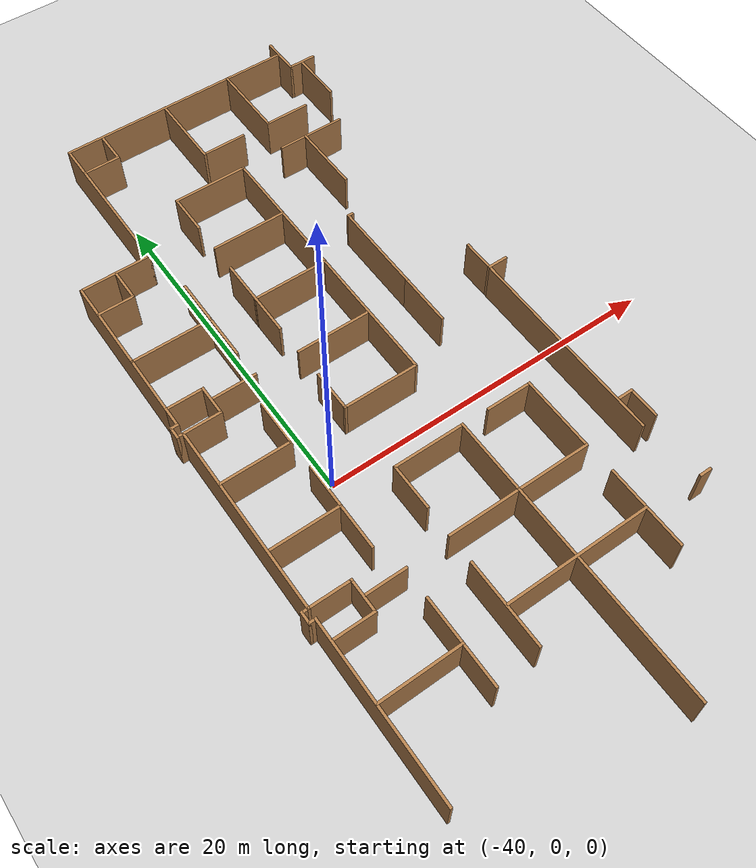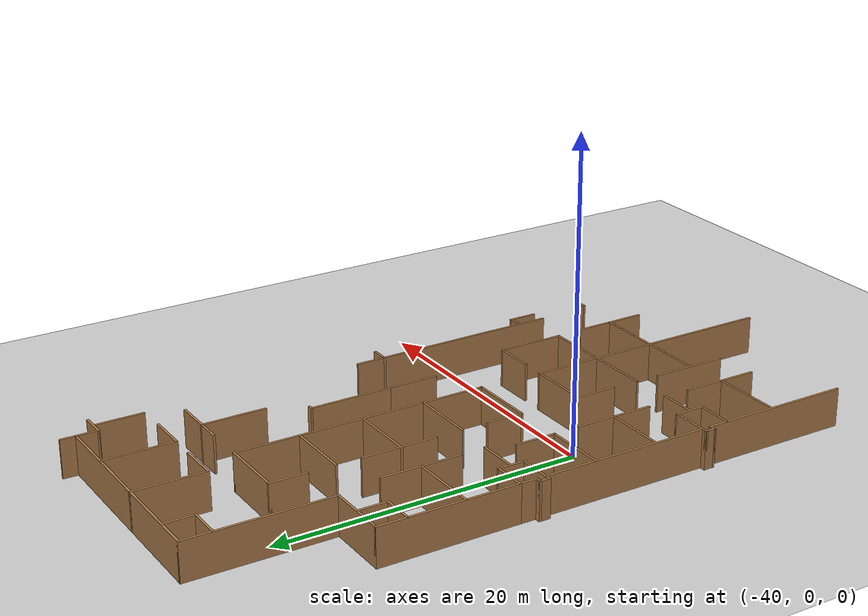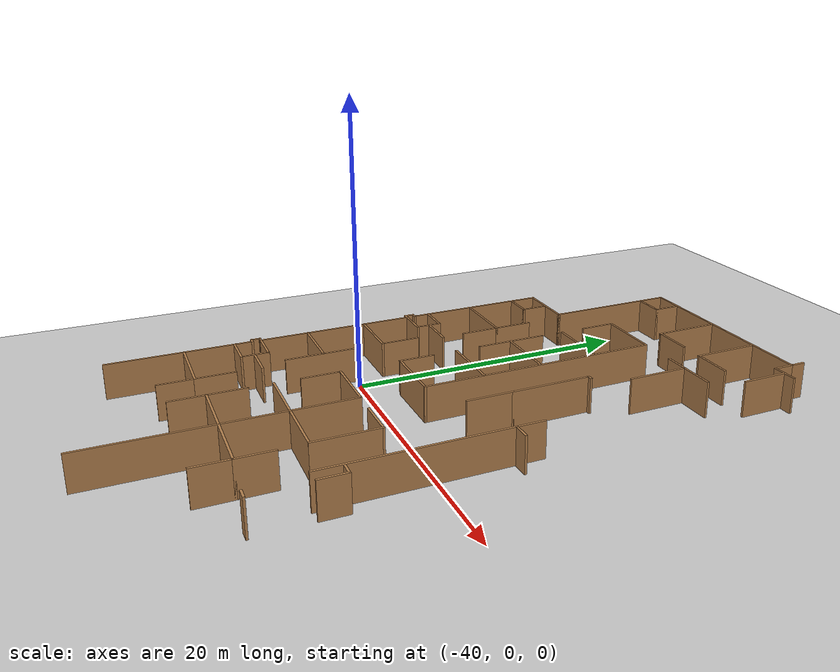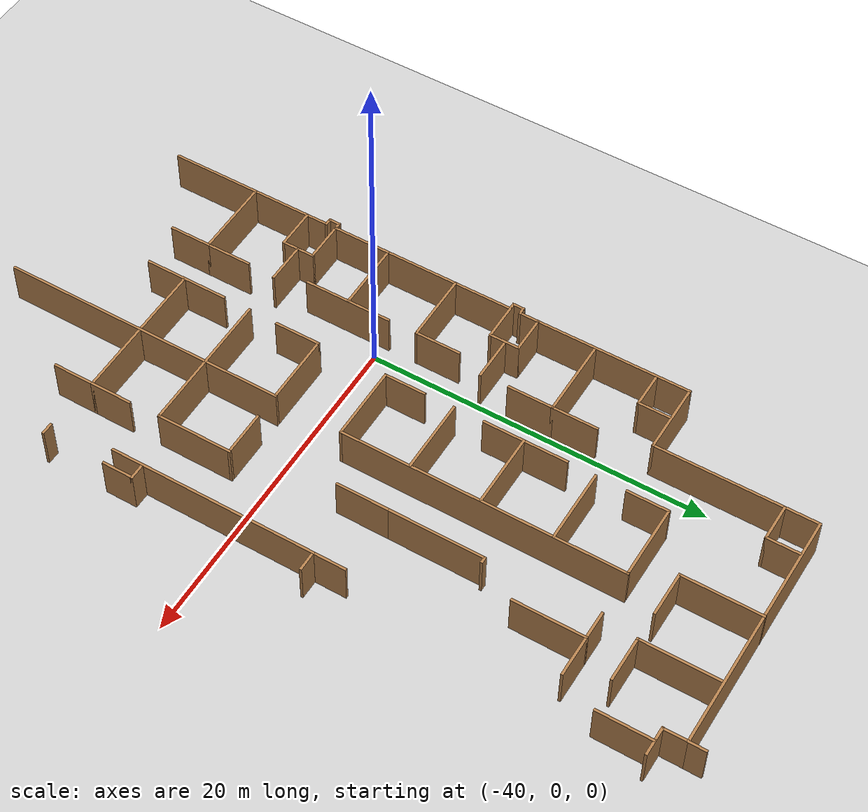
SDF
<sdf version="1.6">
 <world name="default">
  <model name="ground_plane">
   <static>1</static>
   <link name="link">
    <collision name="collision">
     <geometry><plane><normal>0 0 1</normal><size>100 100</size></plane></geometry>
     <surface><friction><ode><mu>100</mu><mu2>50</mu2></ode></friction></surface>
    </collision>
    <visual name="visual">
     <cast_shadows>0</cast_shadows>
     <geometry><plane><normal>0 0 1</normal><size>100 100</size></plane></geometry>
     <material>
      <script><uri>file://media/materials/scripts/gazebo.material</uri><name>Gazebo/Grey</name></script>
     </material>
    </visual>
   </link>
  </model>
  <model name="floor_plan">
   <link name="Wall_26">
    <collision name="Wall_26_Collision">
     <geometry><box><size>10 0.15 2.5</size></box></geometry>
     <pose>0 0 1.25 0 -0 0</pose>
    </collision>
    <visual name="Wall_26_Visual">
     <pose>0 0 1.25 0 -0 0</pose>
     <geometry><box><size>10 0.15 2.5</size></box></geometry>
     <material>
      <script><uri>file://media/materials/scripts/gazebo.material</uri><name>Gazebo/Wood</name></script>
      <ambient>1 1 1 1</ambient>
     </material>
    </visual>
    <pose>-45 -11.1036 0 0 -0 1.5708</pose>
   </link>
   <link name="Wall_27">
    <collision name="Wall_27_Collision">
     <geometry><box><size>0.5 0.15 2.5</size></box></geometry>
     <pose>0 0 1.25 0 -0 0</pose>
    </collision>
    <visual name="Wall_27_Visual">
     <pose>0 0 1.25 0 -0 0</pose>
     <geometry><box><size>0.5 0.15 2.5</size></box></geometry>
     <material>
      <script><uri>file://media/materials/scripts/gazebo.material</uri><name>Gazebo/Wood</name></script>
      <ambient>1 1 1 1</ambient>
     </material>
    </visual>
    <pose>-45.175 -6.1786 0 0 -0 3.14159</pose>
   </link>
   <link name="Wall_31">
    <collision name="Wall_31_Collision">
     <geometry><box><size>4.23243 0.15 2.5</size></box></geometry>
     <pose>0 0 1.25 0 -0 0</pose>
    </collision>
    <visual name="Wall_31_Visual">
     <pose>0 0 1.25 0 -0 0</pose>
     <geometry><box><size>4.23243 0.15 2.5</size></box></geometry>
     <material>
      <script><uri>file://media/materials/scripts/gazebo.material</uri><name>Gazebo/Wood</name></script>
      <ambient>1 1 1 1</ambient>
     </material>
    </visual>
    <pose>-42.9531 16.1808 0 0 -0 0</pose>
   </link>
   <link name="Wall_32">
    <collision name="Wall_32_Collision">
     <geometry><box><size>9.5 0.15 2.5</size></box></geometry>
     <pose>0 0 1.25 0 -0 0</pose>
    </collision>
    <visual name="Wall_32_Visual">
     <pose>0 0 1.25 0 -0 0</pose>
     <geometry><box><size>9.5 0.15 2.5</size></box></geometry>
     <material>
      <script><uri>file://media/materials/scripts/gazebo.material</uri><name>Gazebo/Wood</name></script>
      <ambient>1 1 1 1</ambient>
     </material>
    </visual>
    <pose>-40.9119 20.8558 0 0 -0 1.5708</pose>
   </link>
   <link name="Wall_34">
    <collision name="Wall_34_Collision">
     <geometry><box><size>14.5 0.15 2.5</size></box></geometry>
     <pose>0 0 1.25 0 -0 0</pose>
    </collision>
    <visual name="Wall_34_Visual">
     <pose>0 0 1.25 0 -0 0</pose>
     <geometry><box><size>14.5 0.15 2.5</size></box></geometry>
     <material>
      <script><uri>file://media/materials/scripts/gazebo.material</uri><name>Gazebo/Wood</name></script>
      <ambient>1 1 1 1</ambient>
     </material>
    </visual>
    <pose>-33.7369 25.5308 0 0 -0 0</pose>
   </link>
   <link name="Wall_35">
    <collision name="Wall_35_Collision">
     <geometry><box><size>1.09066 0.15 2.5</size></box></geometry>
     <pose>0 0 1.25 0 -0 0</pose>
    </collision>
    <visual name="Wall_35_Visual">
     <pose>0 0 1.25 0 -0 0</pose>
     <geometry><box><size>1.09066 0.15 2.5</size></box></geometry>
     <material>
      <script><uri>file://media/materials/scripts/gazebo.material</uri><name>Gazebo/Wood</name></script>
      <ambient>1 1 1 1</ambient>
     </material>
    </visual>
    <pose>-26.556 26.0011 0 0 -0 1.55812</pose>
   </link>
   <link name="Wall_37">
    <collision name="Wall_37_Collision">
     <geometry><box><size>2 0.15 2.5</size></box></geometry>
     <pose>0 0 1.25 0 -0 0</pose>
    </collision>
    <visual name="Wall_37_Visual">
     <pose>0 0 1.25 0 -0 0</pose>
     <geometry><box><size>2 0.15 2.5</size></box></geometry>
     <material>
      <script><uri>file://media/materials/scripts/gazebo.material</uri><name>Gazebo/Wood</name></script>
      <ambient>1 1 1 1</ambient>
     </material>
    </visual>
    <pose>-38.7822 24.511 0 0 0 -1.5708</pose>
   </link>
   <link name="Wall_38">
    <collision name="Wall_38_Collision">
     <geometry><box><size>2.25 0.15 2.5</size></box></geometry>
     <pose>0 0 1.25 0 -0 0</pose>
    </collision>
    <visual name="Wall_38_Visual">
     <pose>0 0 1.25 0 -0 0</pose>
     <geometry><box><size>2.25 0.15 2.5</size></box></geometry>
     <material>
      <script><uri>file://media/materials/scripts/gazebo.material</uri><name>Gazebo/Wood</name></script>
      <ambient>1 1 1 1</ambient>
     </material>
    </visual>
    <pose>-39.8322 23.586 0 0 -0 3.14159</pose>
   </link>
   <link name="Wall_40">
    <collision name="Wall_40_Collision">
     <geometry><box><size>4.75 0.15 2.5</size></box></geometry>
     <pose>0 0 1.25 0 -0 0</pose>
    </collision>
    <visual name="Wall_40_Visual">
     <pose>0 0 1.25 0 -0 0</pose>
     <geometry><box><size>4.75 0.15 2.5</size></box></geometry>
     <material>
      <script><uri>file://media/materials/scripts/gazebo.material</uri><name>Gazebo/Wood</name></script>
      <ambient>1 1 1 1</ambient>
     </material>
    </visual>
    <pose>-34.595 23.2407 0 0 0 -1.5708</pose>
   </link>
   <link name="Wall_41">
    <collision name="Wall_41_Collision">
     <geometry><box><size>2.75 0.15 2.5</size></box></geometry>
     <pose>0 0 1.25 0 -0 0</pose>
    </collision>
    <visual name="Wall_41_Visual">
     <pose>0 0 1.25 0 -0 0</pose>
     <geometry><box><size>2.75 0.15 2.5</size></box></geometry>
     <material>
      <script><uri>file://media/materials/scripts/gazebo.material</uri><name>Gazebo/Wood</name></script>
      <ambient>1 1 1 1</ambient>
     </material>
    </visual>
    <pose>-33.295 20.9407 0 0 -0 0</pose>
   </link>
   <link name="Wall_43">
    <collision name="Wall_43_Collision">
     <geometry><box><size>4.75 0.15 2.5</size></box></geometry>
     <pose>0 0 1.25 0 -0 0</pose>
    </collision>
    <visual name="Wall_43_Visual">
     <pose>0 0 1.25 0 -0 0</pose>
     <geometry><box><size>4.75 0.15 2.5</size></box></geometry>
     <material>
      <script><uri>file://media/materials/scripts/gazebo.material</uri><name>Gazebo/Wood</name></script>
      <ambient>1 1 1 1</ambient>
     </material>
    </visual>
    <pose>-30.277 23.2145 0 0 0 -1.5708</pose>
   </link>
   <link name="Wall_44">
    <collision name="Wall_44_Collision">
     <geometry><box><size>2.75 0.15 2.5</size></box></geometry>
     <pose>0 0 1.25 0 -0 0</pose>
    </collision>
    <visual name="Wall_44_Visual">
     <pose>0 0 1.25 0 -0 0</pose>
     <geometry><box><size>2.75 0.15 2.5</size></box></geometry>
     <material>
      <script><uri>file://media/materials/scripts/gazebo.material</uri><name>Gazebo/Wood</name></script>
      <ambient>1 1 1 1</ambient>
     </material>
    </visual>
    <pose>-28.977 20.9145 0 0 -0 0</pose>
   </link>
   <link name="Wall_49">
    <collision name="Wall_49_Collision">
     <geometry><box><size>1.5 0.15 2.5</size></box></geometry>
     <pose>0 0 1.25 0 -0 0</pose>
    </collision>
    <visual name="Wall_49_Visual">
     <pose>0 0 1.25 0 -0 0</pose>
     <geometry><box><size>1.5 0.15 2.5</size></box></geometry>
     <material>
      <script><uri>file://media/materials/scripts/gazebo.material</uri><name>Gazebo/Wood</name></script>
      <ambient>1 1 1 1</ambient>
     </material>
    </visual>
    <pose>-26.5619 24.8558 0 0 0 -1.5708</pose>
   </link>
   <link name="Wall_50">
    <collision name="Wall_50_Collision">
     <geometry><box><size>1.75 0.15 2.5</size></box></geometry>
     <pose>0 0 1.25 0 -0 0</pose>
    </collision>
    <visual name="Wall_50_Visual">
     <pose>0 0 1.25 0 -0 0</pose>
     <geometry><box><size>1.75 0.15 2.5</size></box></geometry>
     <material>
      <script><uri>file://media/materials/scripts/gazebo.material</uri><name>Gazebo/Wood</name></script>
      <ambient>1 1 1 1</ambient>
     </material>
    </visual>
    <pose>-25.7619 24.1808 0 0 -0 0</pose>
   </link>
   <link name="Wall_528">
    <collision name="Wall_528_Collision">
     <geometry><box><size>3.25 0.15 2.5</size></box></geometry>
     <pose>0 0 1.25 0 -0 0</pose>
    </collision>
    <visual name="Wall_528_Visual">
     <pose>0 0 1.25 0 -0 0</pose>
     <geometry><box><size>3.25 0.15 2.5</size></box></geometry>
     <material>
      <script><uri>file://media/materials/scripts/gazebo.material</uri><name>Gazebo/Wood</name></script>
      <ambient>1 1 1 1</ambient>
     </material>
    </visual>
    <pose>-30.4655 5.30215 0 0 0 -1.5708</pose>
   </link>
   <link name="Wall_54">
    <collision name="Wall_54_Collision">
     <geometry><box><size>3.25 0.15 2.5</size></box></geometry>
     <pose>0 0 1.25 0 -0 0</pose>
    </collision>
    <visual name="Wall_54_Visual">
     <pose>0 0 1.25 0 -0 0</pose>
     <geometry><box><size>3.25 0.15 2.5</size></box></geometry>
     <material>
      <script><uri>file://media/materials/scripts/gazebo.material</uri><name>Gazebo/Wood</name></script>
      <ambient>1 1 1 1</ambient>
     </material>
    </visual>
    <pose>-25.777 22.5882 0 0 0 -1.5708</pose>
   </link>
   <link name="Wall_589">
    <collision name="Wall_589_Collision">
     <geometry><box><size>1.25 0.15 2.5</size></box></geometry>
     <pose>0 0 1.25 0 -0 0</pose>
    </collision>
    <visual name="Wall_589_Visual">
     <pose>0 0 1.25 0 -0 0</pose>
     <geometry><box><size>1.25 0.15 2.5</size></box></geometry>
     <material>
      <script><uri>file://media/materials/scripts/gazebo.material</uri><name>Gazebo/Wood</name></script>
      <ambient>1 1 1 1</ambient>
     </material>
    </visual>
    <pose>-25.7839 4.96844 0 0 -0 3.14159</pose>
   </link>
   <link name="Wall_590">
    <collision name="Wall_590_Collision">
     <geometry><box><size>2 0.15 2.5</size></box></geometry>
     <pose>0 0 1.25 0 -0 0</pose>
    </collision>
    <visual name="Wall_590_Visual">
     <pose>0 0 1.25 0 -0 0</pose>
     <geometry><box><size>2 0.15 2.5</size></box></geometry>
     <material>
      <script><uri>file://media/materials/scripts/gazebo.material</uri><name>Gazebo/Wood</name></script>
      <ambient>1 1 1 1</ambient>
     </material>
    </visual>
    <pose>-26.3339 5.89344 0 0 -0 1.5708</pose>
   </link>
   <link name="Wall_592">
    <collision name="Wall_592_Collision">
     <geometry><box><size>12.25 0.15 2.5</size></box></geometry>
     <pose>0 0 1.25 0 -0 0</pose>
    </collision>
    <visual name="Wall_592_Visual">
     <pose>0 0 1.25 0 -0 0</pose>
     <geometry><box><size>12.25 0.15 2.5</size></box></geometry>
     <material>
      <script><uri>file://media/materials/scripts/gazebo.material</uri><name>Gazebo/Wood</name></script>
      <ambient>1 1 1 1</ambient>
     </material>
    </visual>
    <pose>-26.3339 -1.08156 0 0 0 -1.5708</pose>
   </link>
   <link name="Wall_605">
    <collision name="Wall_605_Collision">
     <geometry><box><size>1 0.15 2.5</size></box></geometry>
     <pose>0 0 1.25 0 -0 0</pose>
    </collision>
    <visual name="Wall_605_Visual">
     <pose>0 0 1.25 0 -0 0</pose>
     <geometry><box><size>1 0.15 2.5</size></box></geometry>
     <material>
      <script><uri>file://media/materials/scripts/gazebo.material</uri><name>Gazebo/Wood</name></script>
      <ambient>1 1 1 1</ambient>
     </material>
    </visual>
    <pose>-25.8341 -5.29829 0 0 -0 0</pose>
   </link>
   <link name="Wall_606">
    <collision name="Wall_606_Collision">
     <geometry><box><size>1.9 0.15 2.5</size></box></geometry>
     <pose>0 0 1.25 0 -0 0</pose>
    </collision>
    <visual name="Wall_606_Visual">
     <pose>0 0 1.25 0 -0 0</pose>
     <geometry><box><size>1.9 0.15 2.5</size></box></geometry>
     <material>
      <script><uri>file://media/materials/scripts/gazebo.material</uri><name>Gazebo/Wood</name></script>
      <ambient>1 1 1 1</ambient>
     </material>
    </visual>
    <pose>-25.4091 -6.17329 0 0 0 -1.5708</pose>
   </link>
   <link name="Wall_608">
    <collision name="Wall_608_Collision">
     <geometry><box><size>5.5 0.15 2.5</size></box></geometry>
     <pose>0 0 1.25 0 -0 0</pose>
    </collision>
    <visual name="Wall_608_Visual">
     <pose>0 0 1.25 0 -0 0</pose>
     <geometry><box><size>5.5 0.15 2.5</size></box></geometry>
     <material>
      <script><uri>file://media/materials/scripts/gazebo.material</uri><name>Gazebo/Wood</name></script>
      <ambient>1 1 1 1</ambient>
     </material>
    </visual>
    <pose>-30.4655 9.52715 0 0 -0 1.5708</pose>
   </link>
   <link name="Wall_625">
    <collision name="Wall_625_Collision">
     <geometry><box><size>0.4 0.15 2.5</size></box></geometry>
     <pose>0 0 1.25 0 -0 0</pose>
    </collision>
    <visual name="Wall_625_Visual">
     <pose>0 0 1.25 0 -0 0</pose>
     <geometry><box><size>0.4 0.15 2.5</size></box></geometry>
     <material>
      <script><uri>file://media/materials/scripts/gazebo.material</uri><name>Gazebo/Wood</name></script>
      <ambient>1 1 1 1</ambient>
     </material>
    </visual>
    <pose>-30.3369 12.3256 0 0 -0 3.14159</pose>
   </link>
   <link name="Wall_633">
    <collision name="Wall_633_Collision">
     <geometry><box><size>4.25 0.15 2.5</size></box></geometry>
     <pose>0 0 1.25 0 -0 0</pose>
    </collision>
    <visual name="Wall_633_Visual">
     <pose>0 0 1.25 0 -0 0</pose>
     <geometry><box><size>4.25 0.15 2.5</size></box></geometry>
     <material>
      <script><uri>file://media/materials/scripts/gazebo.material</uri><name>Gazebo/Wood</name></script>
      <ambient>1 1 1 1</ambient>
     </material>
    </visual>
    <pose>-29.0526 16.7289 0 0 -0 1.5708</pose>
   </link>
   <link name="Wall_634">
    <collision name="Wall_634_Collision">
     <geometry><box><size>1.75 0.15 2.5</size></box></geometry>
     <pose>0 0 1.25 0 -0 0</pose>
    </collision>
    <visual name="Wall_634_Visual">
     <pose>0 0 1.25 0 -0 0</pose>
     <geometry><box><size>1.75 0.15 2.5</size></box></geometry>
     <material>
      <script><uri>file://media/materials/scripts/gazebo.material</uri><name>Gazebo/Wood</name></script>
      <ambient>1 1 1 1</ambient>
     </material>
    </visual>
    <pose>-29.8526 18.7789 0 0 -0 3.14159</pose>
   </link>
   <link name="Wall_636">
    <collision name="Wall_636_Collision">
     <geometry><box><size>2.5 0.15 2.5</size></box></geometry>
     <pose>0 0 1.25 0 -0 0</pose>
    </collision>
    <visual name="Wall_636_Visual">
     <pose>0 0 1.25 0 -0 0</pose>
     <geometry><box><size>2.5 0.15 2.5</size></box></geometry>
     <material>
      <script><uri>file://media/materials/scripts/gazebo.material</uri><name>Gazebo/Wood</name></script>
      <ambient>1 1 1 1</ambient>
     </material>
    </visual>
    <pose>-27.8776 18.7789 0 0 -0 0</pose>
   </link>
   <link name="Wall_645">
    <collision name="Wall_645_Collision">
     <geometry><box><size>2.5 0.15 2.5</size></box></geometry>
     <pose>0 0 1.25 0 -0 0</pose>
    </collision>
    <visual name="Wall_645_Visual">
     <pose>0 0 1.25 0 -0 0</pose>
     <geometry><box><size>2.5 0.15 2.5</size></box></geometry>
     <material>
      <script><uri>file://media/materials/scripts/gazebo.material</uri><name>Gazebo/Wood</name></script>
      <ambient>1 1 1 1</ambient>
     </material>
    </visual>
    <pose>-37.6858 17.5761 0 0 -0 1.5708</pose>
   </link>
   <link name="Wall_646">
    <collision name="Wall_646_Collision">
     <geometry><box><size>4.5 0.15 2.5</size></box></geometry>
     <pose>0 0 1.25 0 -0 0</pose>
    </collision>
    <visual name="Wall_646_Visual">
     <pose>0 0 1.25 0 -0 0</pose>
     <geometry><box><size>4.5 0.15 2.5</size></box></geometry>
     <material>
      <script><uri>file://media/materials/scripts/gazebo.material</uri><name>Gazebo/Wood</name></script>
      <ambient>1 1 1 1</ambient>
     </material>
    </visual>
    <pose>-35.5108 18.7511 0 0 -0 0</pose>
   </link>
   <link name="Wall_647">
    <collision name="Wall_647_Collision">
     <geometry><box><size>16.75 0.15 2.5</size></box></geometry>
     <pose>0 0 1.25 0 -0 0</pose>
    </collision>
    <visual name="Wall_647_Visual">
     <pose>0 0 1.25 0 -0 0</pose>
     <geometry><box><size>16.75 0.15 2.5</size></box></geometry>
     <material>
      <script><uri>file://media/materials/scripts/gazebo.material</uri><name>Gazebo/Wood</name></script>
      <ambient>1 1 1 1</ambient>
     </material>
    </visual>
    <pose>-33.3358 10.4511 0 0 0 -1.5708</pose>
   </link>
   <link name="Wall_648">
    <collision name="Wall_648_Collision">
     <geometry><box><size>4.5 0.15 2.5</size></box></geometry>
     <pose>0 0 1.25 0 -0 0</pose>
    </collision>
    <visual name="Wall_648_Visual">
     <pose>0 0 1.25 0 -0 0</pose>
     <geometry><box><size>4.5 0.15 2.5</size></box></geometry>
     <material>
      <script><uri>file://media/materials/scripts/gazebo.material</uri><name>Gazebo/Wood</name></script>
      <ambient>1 1 1 1</ambient>
     </material>
    </visual>
    <pose>-35.5108 2.15114 0 0 -0 3.14159</pose>
   </link>
   <link name="Wall_649">
    <collision name="Wall_649_Collision">
     <geometry><box><size>2.5 0.15 2.5</size></box></geometry>
     <pose>0 0 1.25 0 -0 0</pose>
    </collision>
    <visual name="Wall_649_Visual">
     <pose>0 0 1.25 0 -0 0</pose>
     <geometry><box><size>2.5 0.15 2.5</size></box></geometry>
     <material>
      <script><uri>file://media/materials/scripts/gazebo.material</uri><name>Gazebo/Wood</name></script>
      <ambient>1 1 1 1</ambient>
     </material>
    </visual>
    <pose>-37.6858 3.32613 0 0 -0 1.5708</pose>
   </link>
   <link name="Wall_651">
    <collision name="Wall_651_Collision">
     <geometry><box><size>5 0.15 2.5</size></box></geometry>
     <pose>0 0 1.25 0 -0 0</pose>
    </collision>
    <visual name="Wall_651_Visual">
     <pose>0 0 1.25 0 -0 0</pose>
     <geometry><box><size>5 0.15 2.5</size></box></geometry>
     <material>
      <script><uri>file://media/materials/scripts/gazebo.material</uri><name>Gazebo/Wood</name></script>
      <ambient>1 1 1 1</ambient>
     </material>
    </visual>
    <pose>-37.7222 10.5078 0 0 0 -1.5708</pose>
   </link>
   <link name="Wall_654">
    <collision name="Wall_654_Collision">
     <geometry><box><size>4.5 0.15 2.5</size></box></geometry>
     <pose>0 0 1.25 0 -0 0</pose>
    </collision>
    <visual name="Wall_654_Visual">
     <pose>0 0 1.25 0 -0 0</pose>
     <geometry><box><size>4.5 0.15 2.5</size></box></geometry>
     <material>
      <script><uri>file://media/materials/scripts/gazebo.material</uri><name>Gazebo/Wood</name></script>
      <ambient>1 1 1 1</ambient>
     </material>
    </visual>
    <pose>-35.5172 14.5948 0 0 -0 3.14159</pose>
   </link>
   <link name="Wall_656">
    <collision name="Wall_656_Collision">
     <geometry><box><size>4.5 0.15 2.5</size></box></geometry>
     <pose>0 0 1.25 0 -0 0</pose>
    </collision>
    <visual name="Wall_656_Visual">
     <pose>0 0 1.25 0 -0 0</pose>
     <geometry><box><size>4.5 0.15 2.5</size></box></geometry>
     <material>
      <script><uri>file://media/materials/scripts/gazebo.material</uri><name>Gazebo/Wood</name></script>
      <ambient>1 1 1 1</ambient>
     </material>
    </visual>
    <pose>-35.5573 10.4169 0 0 -0 3.14159</pose>
   </link>
   <link name="Wall_658">
    <collision name="Wall_658_Collision">
     <geometry><box><size>4.5 0.15 2.5</size></box></geometry>
     <pose>0 0 1.25 0 -0 0</pose>
    </collision>
    <visual name="Wall_658_Visual">
     <pose>0 0 1.25 0 -0 0</pose>
     <geometry><box><size>4.5 0.15 2.5</size></box></geometry>
     <material>
      <script><uri>file://media/materials/scripts/gazebo.material</uri><name>Gazebo/Wood</name></script>
      <ambient>1 1 1 1</ambient>
     </material>
    </visual>
    <pose>-35.5372 6.27917 0 0 -0 3.14159</pose>
   </link>
   <link name="Wall_661">
    <collision name="Wall_661_Collision">
     <geometry><box><size>2 0.15 2.5</size></box></geometry>
     <pose>0 0 1.25 0 -0 0</pose>
    </collision>
    <visual name="Wall_661_Visual">
     <pose>0 0 1.25 0 -0 0</pose>
     <geometry><box><size>2 0.15 2.5</size></box></geometry>
     <material>
      <script><uri>file://media/materials/scripts/gazebo.material</uri><name>Gazebo/Wood</name></script>
      <ambient>1 1 1 1</ambient>
     </material>
    </visual>
    <pose>-42.9388 15.1923 0 0 0 -1.5708</pose>
   </link>
   <link name="Wall_662">
    <collision name="Wall_662_Collision">
     <geometry><box><size>2.15 0.15 2.5</size></box></geometry>
     <pose>0 0 1.25 0 -0 0</pose>
    </collision>
    <visual name="Wall_662_Visual">
     <pose>0 0 1.25 0 -0 0</pose>
     <geometry><box><size>2.15 0.15 2.5</size></box></geometry>
     <material>
      <script><uri>file://media/materials/scripts/gazebo.material</uri><name>Gazebo/Wood</name></script>
      <ambient>1 1 1 1</ambient>
     </material>
    </visual>
    <pose>-43.9388 14.2673 0 0 -0 3.14159</pose>
   </link>
   <link name="Wall_664">
    <collision name="Wall_664_Collision">
     <geometry><box><size>4.75 0.15 2.5</size></box></geometry>
     <pose>0 0 1.25 0 -0 0</pose>
    </collision>
    <visual name="Wall_664_Visual">
     <pose>0 0 1.25 0 -0 0</pose>
     <geometry><box><size>4.75 0.15 2.5</size></box></geometry>
     <material>
      <script><uri>file://media/materials/scripts/gazebo.material</uri><name>Gazebo/Wood</name></script>
      <ambient>1 1 1 1</ambient>
     </material>
    </visual>
    <pose>-42.661 10.6354 0 0 -0 0</pose>
   </link>
   <link name="Wall_665">
    <collision name="Wall_665_Collision">
     <geometry><box><size>2.75 0.15 2.5</size></box></geometry>
     <pose>0 0 1.25 0 -0 0</pose>
    </collision>
    <visual name="Wall_665_Visual">
     <pose>0 0 1.25 0 -0 0</pose>
     <geometry><box><size>2.75 0.15 2.5</size></box></geometry>
     <material>
      <script><uri>file://media/materials/scripts/gazebo.material</uri><name>Gazebo/Wood</name></script>
      <ambient>1 1 1 1</ambient>
     </material>
    </visual>
    <pose>-40.361 11.9354 0 0 -0 1.5708</pose>
   </link>
   <link name="Wall_667">
    <collision name="Wall_667_Collision">
     <geometry><box><size>2.75 0.15 2.5</size></box></geometry>
     <pose>0 0 1.25 0 -0 0</pose>
    </collision>
    <visual name="Wall_667_Visual">
     <pose>0 0 1.25 0 -0 0</pose>
     <geometry><box><size>2.75 0.15 2.5</size></box></geometry>
     <material>
      <script><uri>file://media/materials/scripts/gazebo.material</uri><name>Gazebo/Wood</name></script>
      <ambient>1 1 1 1</ambient>
     </material>
    </visual>
    <pose>-40.361 9.33537 0 0 0 -1.5708</pose>
   </link>
   <link name="Wall_669">
    <collision name="Wall_669_Collision">
     <geometry><box><size>2.25 0.15 2.5</size></box></geometry>
     <pose>0 0 1.25 0 -0 0</pose>
    </collision>
    <visual name="Wall_669_Visual">
     <pose>0 0 1.25 0 -0 0</pose>
     <geometry><box><size>2.25 0.15 2.5</size></box></geometry>
     <material>
      <script><uri>file://media/materials/scripts/gazebo.material</uri><name>Gazebo/Wood</name></script>
      <ambient>1 1 1 1</ambient>
     </material>
    </visual>
    <pose>-43.9268 7.16123 0 0 -0 0</pose>
   </link>
   <link name="Wall_672">
    <collision name="Wall_672_Collision">
     <geometry><box><size>1.75 0.15 2.5</size></box></geometry>
     <pose>0 0 1.25 0 -0 0</pose>
    </collision>
    <visual name="Wall_672_Visual">
     <pose>0 0 1.25 0 -0 0</pose>
     <geometry><box><size>1.75 0.15 2.5</size></box></geometry>
     <material>
      <script><uri>file://media/materials/scripts/gazebo.material</uri><name>Gazebo/Wood</name></script>
      <ambient>1 1 1 1</ambient>
     </material>
    </visual>
    <pose>-42.8768 6.36123 0 0 0 -1.5708</pose>
   </link>
   <link name="Wall_675">
    <collision name="Wall_675_Collision">
     <geometry><box><size>9.17 0.15 2.5</size></box></geometry>
     <pose>0 0 1.25 0 -0 0</pose>
    </collision>
    <visual name="Wall_675_Visual">
     <pose>0 0 1.25 0 -0 0</pose>
     <geometry><box><size>9.17 0.15 2.5</size></box></geometry>
     <material>
      <script><uri>file://media/materials/scripts/gazebo.material</uri><name>Gazebo/Wood</name></script>
      <ambient>1 1 1 1</ambient>
     </material>
    </visual>
    <pose>-44.9944 11.6708 0 0 0 -1.5708</pose>
   </link>
   <link name="Wall_681">
    <collision name="Wall_681_Collision">
     <geometry><box><size>1.25 0.15 2.5</size></box></geometry>
     <pose>0 0 1.25 0 -0 0</pose>
    </collision>
    <visual name="Wall_681_Visual">
     <pose>0 0 1.25 0 -0 0</pose>
     <geometry><box><size>1.25 0.15 2.5</size></box></geometry>
     <material>
      <script><uri>file://media/materials/scripts/gazebo.material</uri><name>Gazebo/Wood</name></script>
      <ambient>1 1 1 1</ambient>
     </material>
    </visual>
    <pose>-44.9944 6.61081 0 0 0 -1.5708</pose>
   </link>
   <link name="Wall_682">
    <collision name="Wall_682_Collision">
     <geometry><box><size>0.5 0.15 2.5</size></box></geometry>
     <pose>0 0 1.25 0 -0 0</pose>
    </collision>
    <visual name="Wall_682_Visual">
     <pose>0 0 1.25 0 -0 0</pose>
     <geometry><box><size>0.5 0.15 2.5</size></box></geometry>
     <material>
      <script><uri>file://media/materials/scripts/gazebo.material</uri><name>Gazebo/Wood</name></script>
      <ambient>1 1 1 1</ambient>
     </material>
    </visual>
    <pose>-45.1694 6.06081 0 0 -0 3.14159</pose>
   </link>
   <link name="Wall_683">
    <collision name="Wall_683_Collision">
     <geometry><box><size>0.75 0.15 2.5</size></box></geometry>
     <pose>0 0 1.25 0 -0 0</pose>
    </collision>
    <visual name="Wall_683_Visual">
     <pose>0 0 1.25 0 -0 0</pose>
     <geometry><box><size>0.75 0.15 2.5</size></box></geometry>
     <material>
      <script><uri>file://media/materials/scripts/gazebo.material</uri><name>Gazebo/Wood</name></script>
      <ambient>1 1 1 1</ambient>
     </material>
    </visual>
    <pose>-45.3444 5.76081 0 0 0 -1.5708</pose>
   </link>
   <link name="Wall_686">
    <collision name="Wall_686_Collision">
     <geometry><box><size>2.618 0.15 2.5</size></box></geometry>
     <pose>0 0 1.25 0 -0 0</pose>
    </collision>
    <visual name="Wall_686_Visual">
     <pose>0 0 1.25 0 -0 0</pose>
     <geometry><box><size>2.618 0.15 2.5</size></box></geometry>
     <material>
      <script><uri>file://media/materials/scripts/gazebo.material</uri><name>Gazebo/Wood</name></script>
      <ambient>1 1 1 1</ambient>
     </material>
    </visual>
    <pose>-44.1104 5.46081 0 0 -0 0</pose>
   </link>
   <link name="Wall_688">
    <collision name="Wall_688_Collision">
     <geometry><box><size>2.65 0.15 2.5</size></box></geometry>
     <pose>0 0 1.25 0 -0 0</pose>
    </collision>
    <visual name="Wall_688_Visual">
     <pose>0 0 1.25 0 -0 0</pose>
     <geometry><box><size>2.65 0.15 2.5</size></box></geometry>
     <material>
      <script><uri>file://media/materials/scripts/gazebo.material</uri><name>Gazebo/Wood</name></script>
      <ambient>1 1 1 1</ambient>
     </material>
    </visual>
    <pose>-41.5337 6.37249 0 0 -0 0</pose>
   </link>
   <link name="Wall_691">
    <collision name="Wall_691_Collision">
     <geometry><box><size>0.75 0.15 2.5</size></box></geometry>
     <pose>0 0 1.25 0 -0 0</pose>
    </collision>
    <visual name="Wall_691_Visual">
     <pose>0 0 1.25 0 -0 0</pose>
     <geometry><box><size>0.75 0.15 2.5</size></box></geometry>
     <material>
      <script><uri>file://media/materials/scripts/gazebo.material</uri><name>Gazebo/Wood</name></script>
      <ambient>1 1 1 1</ambient>
     </material>
    </visual>
    <pose>-45.35 -5.8786 0 0 -0 1.5708</pose>
   </link>
   <link name="Wall_692">
    <collision name="Wall_692_Collision">
     <geometry><box><size>0.5 0.15 2.5</size></box></geometry>
     <pose>0 0 1.25 0 -0 0</pose>
    </collision>
    <visual name="Wall_692_Visual">
     <pose>0 0 1.25 0 -0 0</pose>
     <geometry><box><size>0.5 0.15 2.5</size></box></geometry>
     <material>
      <script><uri>file://media/materials/scripts/gazebo.material</uri><name>Gazebo/Wood</name></script>
      <ambient>1 1 1 1</ambient>
     </material>
    </visual>
    <pose>-45.175 -5.5786 0 0 -0 0</pose>
   </link>
   <link name="Wall_693">
    <collision name="Wall_693_Collision">
     <geometry><box><size>11.15 0.15 2.5</size></box></geometry>
     <pose>0 0 1.25 0 -0 0</pose>
    </collision>
    <visual name="Wall_693_Visual">
     <pose>0 0 1.25 0 -0 0</pose>
     <geometry><box><size>11.15 0.15 2.5</size></box></geometry>
     <material>
      <script><uri>file://media/materials/scripts/gazebo.material</uri><name>Gazebo/Wood</name></script>
      <ambient>1 1 1 1</ambient>
     </material>
    </visual>
    <pose>-45 -0.078604 0 0 -0 1.5708</pose>
   </link>
   <link name="Wall_695">
    <collision name="Wall_695_Collision">
     <geometry><box><size>2.5 0.15 2.5</size></box></geometry>
     <pose>0 0 1.25 0 -0 0</pose>
    </collision>
    <visual name="Wall_695_Visual">
     <pose>0 0 1.25 0 -0 0</pose>
     <geometry><box><size>2.5 0.15 2.5</size></box></geometry>
     <material>
      <script><uri>file://media/materials/scripts/gazebo.material</uri><name>Gazebo/Wood</name></script>
      <ambient>1 1 1 1</ambient>
     </material>
    </visual>
    <pose>-43.825 -5.5786 0 0 -0 0</pose>
   </link>
   <link name="Wall_696">
    <collision name="Wall_696_Collision">
     <geometry><box><size>2 0.15 2.5</size></box></geometry>
     <pose>0 0 1.25 0 -0 0</pose>
    </collision>
    <visual name="Wall_696_Visual">
     <pose>0 0 1.25 0 -0 0</pose>
     <geometry><box><size>2 0.15 2.5</size></box></geometry>
     <material>
      <script><uri>file://media/materials/scripts/gazebo.material</uri><name>Gazebo/Wood</name></script>
      <ambient>1 1 1 1</ambient>
     </material>
    </visual>
    <pose>-42.65 -6.5036 0 0 0 -1.5708</pose>
   </link>
   <link name="Wall_697">
    <collision name="Wall_697_Collision">
     <geometry><box><size>2.45 0.15 2.5</size></box></geometry>
     <pose>0 0 1.25 0 -0 0</pose>
    </collision>
    <visual name="Wall_697_Visual">
     <pose>0 0 1.25 0 -0 0</pose>
     <geometry><box><size>2.45 0.15 2.5</size></box></geometry>
     <material>
      <script><uri>file://media/materials/scripts/gazebo.material</uri><name>Gazebo/Wood</name></script>
      <ambient>1 1 1 1</ambient>
     </material>
    </visual>
    <pose>-43.8 -7.4286 0 0 -0 3.14159</pose>
   </link>
   <link name="Wall_699">
    <collision name="Wall_699_Collision">
     <geometry><box><size>2.5 0.15 2.5</size></box></geometry>
     <pose>0 0 1.25 0 -0 0</pose>
    </collision>
    <visual name="Wall_699_Visual">
     <pose>0 0 1.25 0 -0 0</pose>
     <geometry><box><size>2.5 0.15 2.5</size></box></geometry>
     <material>
      <script><uri>file://media/materials/scripts/gazebo.material</uri><name>Gazebo/Wood</name></script>
      <ambient>1 1 1 1</ambient>
     </material>
    </visual>
    <pose>-41.4538 -6.5259 0 0 -0 0</pose>
   </link>
   <link name="Wall_701">
    <collision name="Wall_701_Collision">
     <geometry><box><size>5.25 0.15 2.5</size></box></geometry>
     <pose>0 0 1.25 0 -0 0</pose>
    </collision>
    <visual name="Wall_701_Visual">
     <pose>0 0 1.25 0 -0 0</pose>
     <geometry><box><size>5.25 0.15 2.5</size></box></geometry>
     <material>
      <script><uri>file://media/materials/scripts/gazebo.material</uri><name>Gazebo/Wood</name></script>
      <ambient>1 1 1 1</ambient>
     </material>
    </visual>
    <pose>-40.9302 -2.22551 0 0 -0 1.5708</pose>
   </link>
   <link name="Wall_703">
    <collision name="Wall_703_Collision">
     <geometry><box><size>4.15 0.15 2.5</size></box></geometry>
     <pose>0 0 1.25 0 -0 0</pose>
    </collision>
    <visual name="Wall_703_Visual">
     <pose>0 0 1.25 0 -0 0</pose>
     <geometry><box><size>4.15 0.15 2.5</size></box></geometry>
     <material>
      <script><uri>file://media/materials/scripts/gazebo.material</uri><name>Gazebo/Wood</name></script>
      <ambient>1 1 1 1</ambient>
     </material>
    </visual>
    <pose>-42.9592 -2.19655 0 0 -0 0</pose>
   </link>
   <link name="Wall_705">
    <collision name="Wall_705_Collision">
     <geometry><box><size>2.75 0.15 2.5</size></box></geometry>
     <pose>0 0 1.25 0 -0 0</pose>
    </collision>
    <visual name="Wall_705_Visual">
     <pose>0 0 1.25 0 -0 0</pose>
     <geometry><box><size>2.75 0.15 2.5</size></box></geometry>
     <material>
      <script><uri>file://media/materials/scripts/gazebo.material</uri><name>Gazebo/Wood</name></script>
      <ambient>1 1 1 1</ambient>
     </material>
    </visual>
    <pose>-40.9558 3.35605 0 0 0 -1.5708</pose>
   </link>
   <link name="Wall_706">
    <collision name="Wall_706_Collision">
     <geometry><box><size>4.15 0.15 2.5</size></box></geometry>
     <pose>0 0 1.25 0 -0 0</pose>
    </collision>
    <visual name="Wall_706_Visual">
     <pose>0 0 1.25 0 -0 0</pose>
     <geometry><box><size>4.15 0.15 2.5</size></box></geometry>
     <material>
      <script><uri>file://media/materials/scripts/gazebo.material</uri><name>Gazebo/Wood</name></script>
      <ambient>1 1 1 1</ambient>
     </material>
    </visual>
    <pose>-42.9558 2.05605 0 0 -0 3.14159</pose>
   </link>
   <link name="Wall_708">
    <collision name="Wall_708_Collision">
     <geometry><box><size>4.75 0.15 2.5</size></box></geometry>
     <pose>0 0 1.25 0 -0 0</pose>
    </collision>
    <visual name="Wall_708_Visual">
     <pose>0 0 1.25 0 -0 0</pose>
     <geometry><box><size>4.75 0.15 2.5</size></box></geometry>
     <material>
      <script><uri>file://media/materials/scripts/gazebo.material</uri><name>Gazebo/Wood</name></script>
      <ambient>1 1 1 1</ambient>
     </material>
    </visual>
    <pose>-42.6551 -10.8505 0 0 -0 0</pose>
   </link>
   <link name="Wall_709">
    <collision name="Wall_709_Collision">
     <geometry><box><size>2.75 0.15 2.5</size></box></geometry>
     <pose>0 0 1.25 0 -0 0</pose>
    </collision>
    <visual name="Wall_709_Visual">
     <pose>0 0 1.25 0 -0 0</pose>
     <geometry><box><size>2.75 0.15 2.5</size></box></geometry>
     <material>
      <script><uri>file://media/materials/scripts/gazebo.material</uri><name>Gazebo/Wood</name></script>
      <ambient>1 1 1 1</ambient>
     </material>
    </visual>
    <pose>-40.3551 -9.55052 0 0 -0 1.5708</pose>
   </link>
   <link name="Wall_711">
    <collision name="Wall_711_Collision">
     <geometry><box><size>2.5 0.15 2.5</size></box></geometry>
     <pose>0 0 1.25 0 -0 0</pose>
    </collision>
    <visual name="Wall_711_Visual">
     <pose>0 0 1.25 0 -0 0</pose>
     <geometry><box><size>2.5 0.15 2.5</size></box></geometry>
     <material>
      <script><uri>file://media/materials/scripts/gazebo.material</uri><name>Gazebo/Wood</name></script>
      <ambient>1 1 1 1</ambient>
     </material>
    </visual>
    <pose>-40.3551 -12.0255 0 0 0 -1.5708</pose>
   </link>
   <link name="Wall_718">
    <collision name="Wall_718_Collision">
     <geometry><box><size>2.75 0.15 2.5</size></box></geometry>
     <pose>0 0 1.25 0 -0 0</pose>
    </collision>
    <visual name="Wall_718_Visual">
     <pose>0 0 1.25 0 -0 0</pose>
     <geometry><box><size>2.75 0.15 2.5</size></box></geometry>
     <material>
      <script><uri>file://media/materials/scripts/gazebo.material</uri><name>Gazebo/Wood</name></script>
      <ambient>1 1 1 1</ambient>
     </material>
    </visual>
    <pose>-37.6352 -3.29944 0 0 -0 1.5708</pose>
   </link>
   <link name="Wall_719">
    <collision name="Wall_719_Collision">
     <geometry><box><size>4.25 0.15 2.5</size></box></geometry>
     <pose>0 0 1.25 0 -0 0</pose>
    </collision>
    <visual name="Wall_719_Visual">
     <pose>0 0 1.25 0 -0 0</pose>
     <geometry><box><size>4.25 0.15 2.5</size></box></geometry>
     <material>
      <script><uri>file://media/materials/scripts/gazebo.material</uri><name>Gazebo/Wood</name></script>
      <ambient>1 1 1 1</ambient>
     </material>
    </visual>
    <pose>-35.5852 -1.99944 0 0 -0 0</pose>
   </link>
   <link name="Wall_720">
    <collision name="Wall_720_Collision">
     <geometry><box><size>17 0.15 2.5</size></box></geometry>
     <pose>0 0 1.25 0 -0 0</pose>
    </collision>
    <visual name="Wall_720_Visual">
     <pose>0 0 1.25 0 -0 0</pose>
     <geometry><box><size>17 0.15 2.5</size></box></geometry>
     <material>
      <script><uri>file://media/materials/scripts/gazebo.material</uri><name>Gazebo/Wood</name></script>
      <ambient>1 1 1 1</ambient>
     </material>
    </visual>
    <pose>-33.5352 -10.4244 0 0 0 -1.5708</pose>
   </link>
   <link name="Wall_728">
    <collision name="Wall_728_Collision">
     <geometry><box><size>5 0.15 2.5</size></box></geometry>
     <pose>0 0 1.25 0 -0 0</pose>
    </collision>
    <visual name="Wall_728_Visual">
     <pose>0 0 1.25 0 -0 0</pose>
     <geometry><box><size>5 0.15 2.5</size></box></geometry>
     <material>
      <script><uri>file://media/materials/scripts/gazebo.material</uri><name>Gazebo/Wood</name></script>
      <ambient>1 1 1 1</ambient>
     </material>
    </visual>
    <pose>-37.6766 -10.4631 0 0 0 -1.5708</pose>
   </link>
   <link name="Wall_731">
    <collision name="Wall_731_Collision">
     <geometry><box><size>8.5 0.15 2.5</size></box></geometry>
     <pose>0 0 1.25 0 -0 0</pose>
    </collision>
    <visual name="Wall_731_Visual">
     <pose>0 0 1.25 0 -0 0</pose>
     <geometry><box><size>8.5 0.15 2.5</size></box></geometry>
     <material>
      <script><uri>file://media/materials/scripts/gazebo.material</uri><name>Gazebo/Wood</name></script>
      <ambient>1 1 1 1</ambient>
     </material>
    </visual>
    <pose>-33.4188 -10.5652 0 0 -0 0</pose>
   </link>
   <link name="Wall_733">
    <collision name="Wall_733_Collision">
     <geometry><box><size>2.5 0.15 2.5</size></box></geometry>
     <pose>0 0 1.25 0 -0 0</pose>
    </collision>
    <visual name="Wall_733_Visual">
     <pose>0 0 1.25 0 -0 0</pose>
     <geometry><box><size>2.5 0.15 2.5</size></box></geometry>
     <material>
      <script><uri>file://media/materials/scripts/gazebo.material</uri><name>Gazebo/Wood</name></script>
      <ambient>1 1 1 1</ambient>
     </material>
    </visual>
    <pose>-29.2438 -9.39024 0 0 -0 1.5708</pose>
   </link>
   <link name="Wall_735">
    <collision name="Wall_735_Collision">
     <geometry><box><size>2.5 0.15 2.5</size></box></geometry>
     <pose>0 0 1.25 0 -0 0</pose>
    </collision>
    <visual name="Wall_735_Visual">
     <pose>0 0 1.25 0 -0 0</pose>
     <geometry><box><size>2.5 0.15 2.5</size></box></geometry>
     <material>
      <script><uri>file://media/materials/scripts/gazebo.material</uri><name>Gazebo/Wood</name></script>
      <ambient>1 1 1 1</ambient>
     </material>
    </visual>
    <pose>-29.2438 -11.7402 0 0 0 -1.5708</pose>
   </link>
   <link name="Wall_737">
    <collision name="Wall_737_Collision">
     <geometry><box><size>8.5 0.15 2.5</size></box></geometry>
     <pose>0 0 1.25 0 -0 0</pose>
    </collision>
    <visual name="Wall_737_Visual">
     <pose>0 0 1.25 0 -0 0</pose>
     <geometry><box><size>8.5 0.15 2.5</size></box></geometry>
     <material>
      <script><uri>file://media/materials/scripts/gazebo.material</uri><name>Gazebo/Wood</name></script>
      <ambient>1 1 1 1</ambient>
     </material>
    </visual>
    <pose>-33.5016 -6.38089 0 0 -0 0</pose>
   </link>
   <link name="Wall_739">
    <collision name="Wall_739_Collision">
     <geometry><box><size>4.5 0.15 2.5</size></box></geometry>
     <pose>0 0 1.25 0 -0 0</pose>
    </collision>
    <visual name="Wall_739_Visual">
     <pose>0 0 1.25 0 -0 0</pose>
     <geometry><box><size>4.5 0.15 2.5</size></box></geometry>
     <material>
      <script><uri>file://media/materials/scripts/gazebo.material</uri><name>Gazebo/Wood</name></script>
      <ambient>1 1 1 1</ambient>
     </material>
    </visual>
    <pose>-29.3266 -4.20589 0 0 -0 1.5708</pose>
   </link>
   <link name="Wall_740">
    <collision name="Wall_740_Collision">
     <geometry><box><size>2.75 0.15 2.5</size></box></geometry>
     <pose>0 0 1.25 0 -0 0</pose>
    </collision>
    <visual name="Wall_740_Visual">
     <pose>0 0 1.25 0 -0 0</pose>
     <geometry><box><size>2.75 0.15 2.5</size></box></geometry>
     <material>
      <script><uri>file://media/materials/scripts/gazebo.material</uri><name>Gazebo/Wood</name></script>
      <ambient>1 1 1 1</ambient>
     </material>
    </visual>
    <pose>-30.6266 -2.03089 0 0 -0 3.14159</pose>
   </link>
   <link name="Wall_787">
    <collision name="Wall_787_Collision">
     <geometry><box><size>0.75 0.15 2.5</size></box></geometry>
     <pose>0 0 1.25 0 -0 0</pose>
    </collision>
    <visual name="Wall_787_Visual">
     <pose>0 0 1.25 0 -0 0</pose>
     <geometry><box><size>0.75 0.15 2.5</size></box></geometry>
     <material>
      <script><uri>file://media/materials/scripts/gazebo.material</uri><name>Gazebo/Wood</name></script>
      <ambient>1 1 1 1</ambient>
     </material>
    </visual>
    <pose>-25.65 -10.8025 0 0 -0 3.14159</pose>
   </link>
   <static>1</static>
  </model>
 </world>
</sdf>
